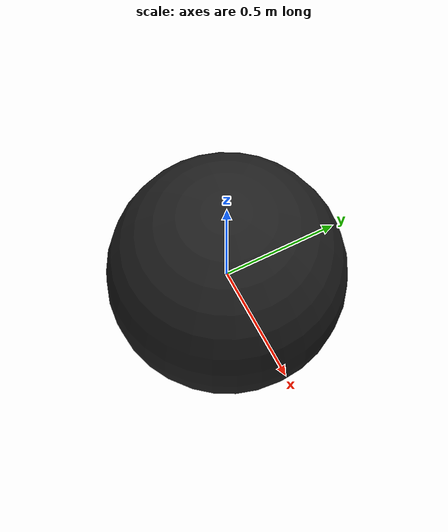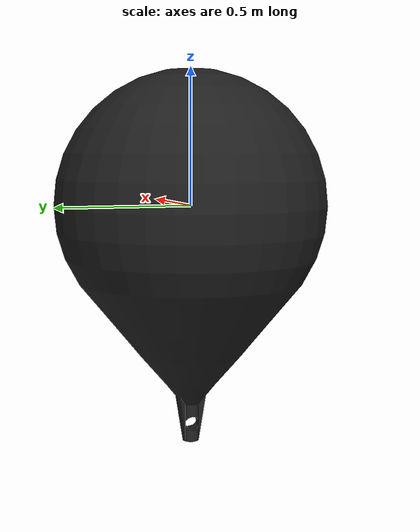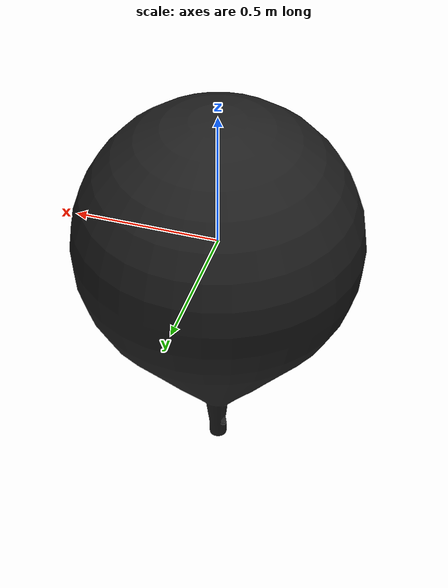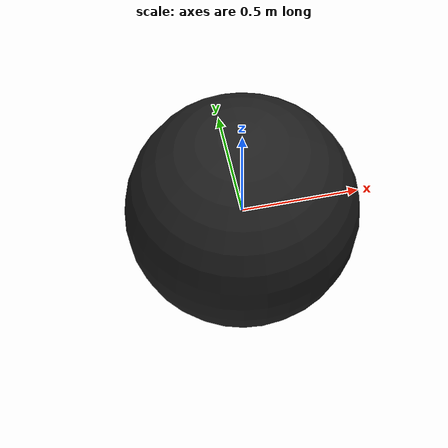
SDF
<?xml version="1.0" ?>
<sdf version="1.4">
  <model name="buoy_a7">
    <link name="link">
      <pose>0 0 0 0 0 0</pose>
      <collision name="collision">
        <geometry>
          <mesh>
            <uri>model://buoy_a7/meshes/a7.dae</uri>
          </mesh>
        </geometry>
      </collision>
      <visual name="visual">
        <cast_shadows>false</cast_shadows>
        <geometry>
          <mesh>
            <uri>model://buoy_a7/meshes/a7.dae</uri>
          </mesh>
        </geometry>
        <material>
          <script>
            <uri>file://media/materials/scripts/gazebo.material</uri>
            <name>Gazebo/Black</name>
          </script>
        </material>
      </visual>
      <inertial>
      	<origin
        xyz="0 0 -5"
        rpy="0 0 0" />
        <mass>10</mass>
        <inertia>
          <ixx>10</ixx>
          <ixy>0</ixy>
          <ixz>0</ixz>
          <iyy>10</iyy>
          <iyz>0</iyz>
          <izz>10</izz>
        </inertia>
      </inertial>
    </link>
    <plugin name="BuoyancyPlugin" filename="libbuoyancy_gazebo_plugin.so">
      <fluid_density>1000</fluid_density>
      <fluid_level>0.25</fluid_level>
      <fluid_drag>50</fluid_drag>
      <link>
        <name>link</name>
        <center_of_volume>0 0 0.1</center_of_volume>
        <area>0.1</area>
        <height>0.5</height>
      </link>
    </plugin>
  </model>
</sdf>
